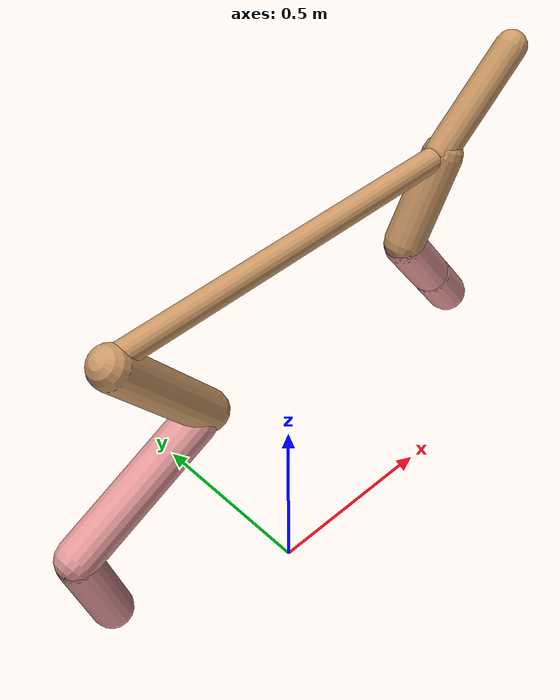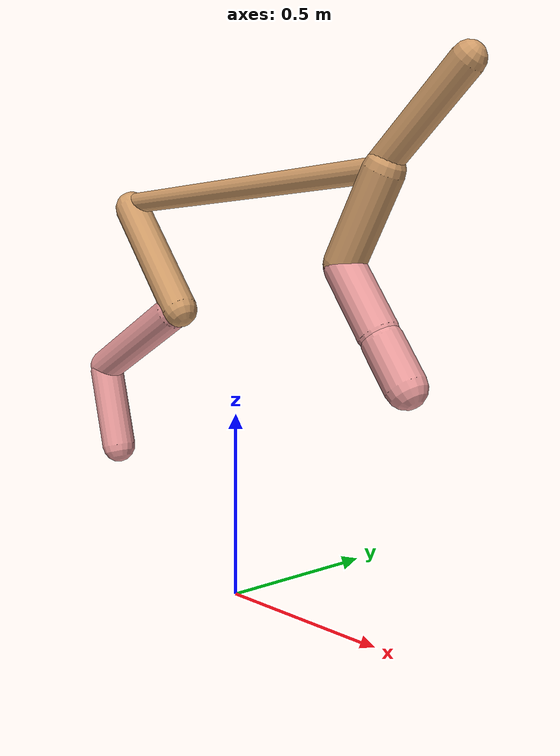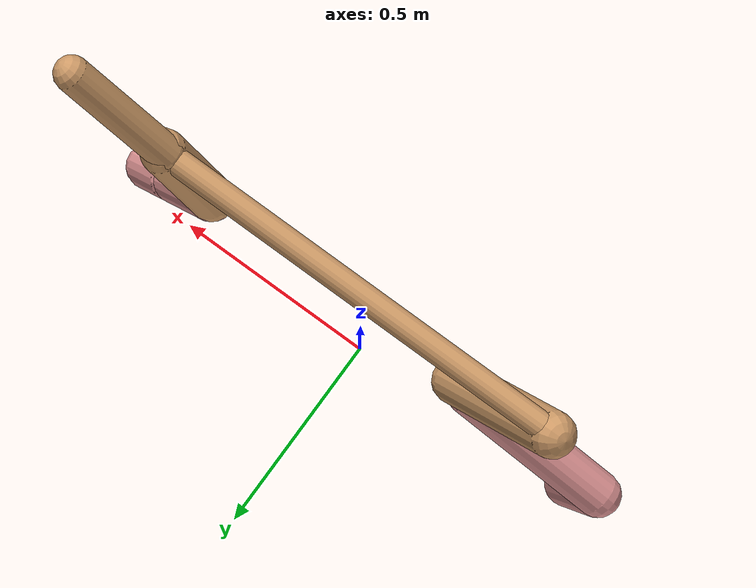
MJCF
<mujoco model="cheetah">
  <compiler angle="radian" coordinate="local" inertiafromgeom="true" settotalmass="14" />
  <default>
    <joint armature=".1" damping=".01" limited="true" solimplimit="0 .8 .03" solreflimit=".02 1" stiffness="8" />
    <geom conaffinity="0" condim="3" contype="1" friction="0.8 .1 .1" rgba="0.8 0.6 .4 1" solimp="0.0 0.8 0.01" solref="0.02 1" />
    <motor ctrllimited="true" ctrlrange="-1 1" />
  </default>
  <size nstack="300000" nuser_geom="1" />
  <option gravity="0 0 -9.81" timestep="0.01" />
  <worldbody>
    <body name="torso" pos="0.0 0.0 1.1048472684473416">
      <joint armature="0" axis="1 0 0" damping="0" limited="false" name="ignorex" pos="0 0 0" stiffness="0" type="slide" />
      <joint armature="0" axis="0 0 1" damping="0" limited="false" name="ignorez" pos="0 0 0" stiffness="0" type="slide" />
      <joint armature="0" axis="0 1 0" damping="0" limited="false" name="ignorey" pos="0 0 0" stiffness="0" type="hinge" />
      <geom fromto="-0.5 0.0 0.0 0.5137631076378312 0.0 0.0" name="torso" size="0.030008188752408987" type="capsule" />
      <geom axisangle="0 1 0 .87" name="head" pos="0.613763107637831 0.0 0.1" size="0.039337778395312724 0.15" type="capsule" />

      <body name="bthigh" pos="-.5 0 0">
        <joint axis="0 1 0" damping="6" name="bthigh" pos="0 0 0" range="-.52 1.05" stiffness="240" type="hinge" />
        <geom axisangle="0 1 0 -3.8" name="bthigh" pos="0.1303320014665911 0.0 -0.16943160190656845" size="0.05178724302213381 0.19474818129225807" type="capsule" />
        <body name="bshin" pos="0.22066400293318222 0.0 -0.3288632038131369">
          <joint axis="0 1 0" damping="4.5" name="bshin" pos="0 0 0" range="-.785 .785" stiffness="180" type="hinge" />
          <geom axisangle="0 1 0 -2.03" name="bshin" pos="-0.1860304752247472 0.0 -0.0930152376123736" rgba="0.9 0.6 0.6 1" size="0.05178724302213381 0.20146363581957732" type="capsule" />
          <body name="bfoot" pos="-0.3720609504494944 0.0 -0.1860304752247472">
            <joint axis="0 1 0" damping="3" name="bfoot" pos="0 0 0" range="-.4 .785" stiffness="120" type="hinge" />
            <geom axisangle="0 1 0 -.27" name="bfoot" pos="0.03952905962880156 0.0 -0.12781062613312505" rgba="0.9 0.6 0.6 1" size="0.05178724302213381 0.1262505451136018" type="capsule" />
            <inertial mass="10" />
          </body>
        </body>
      </body>
      <body name="fthigh" pos="0.5137631076378311 0.0 0.0">
        <joint axis="0 1 0" damping="4.5" name="fthigh" pos="0 0 0" range="-1.5 0.8" stiffness="180" type="hinge" />
        <geom axisangle="0 1 0 .52" name="fthigh" pos="-0.06226520461101528 0.0 -0.10674035076174046" size="0.05066553555116463 0.11764925546981074" type="capsule" />
        <body name="fshin" pos="-0.12453040922203056 0.0 -0.21348070152348092">
          <joint axis="0 1 0" damping="3" name="fshin" pos="0 0 0" range="-1.2 1.1" stiffness="120" type="hinge" />
          <geom axisangle="0 1 0 -.6" name="fshin" pos="0.057836857991039096 0.0 -0.08008180337220798" rgba="0.9 0.6 0.6 1" size="0.05066553555116463 0.09376557202857096" type="capsule" />
          <body name="ffoot" pos="0.11567371598207819 0.0 -0.16016360674441596">
            <joint axis="0 1 0" damping="1.5" name="ffoot" pos="0 0 0" range="-3.1 -0.3" stiffness="60" type="hinge" />
            <geom axisangle="0 1 0 -.6" name="ffoot" pos="0.04063103598051894 0.0 -0.06320383374747392" rgba="0.9 0.6 0.6 1" size="0.05066553555116463 0.0619206607735846" type="capsule" />
            <inertial mass="10" />
          </body>
        </body>
      </body>
    </body>
  </worldbody>
  <actuator>
    <motor gear="120" joint="bthigh" name="bthigh" />
    <motor gear="90" joint="bshin" name="bshin" />
    <motor gear="60" joint="bfoot" name="bfoot" />
    <motor gear="120" joint="fthigh" name="fthigh" />
    <motor gear="60" joint="fshin" name="fshin" />
    <motor gear="30" joint="ffoot" name="ffoot" />
  </actuator>
</mujoco>
